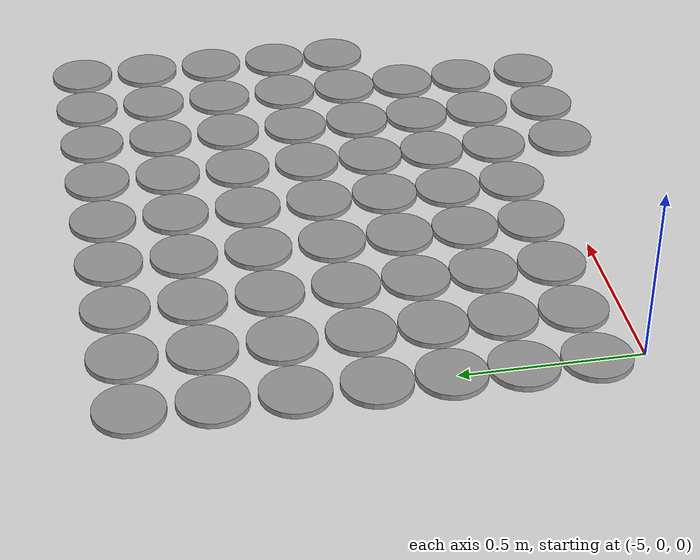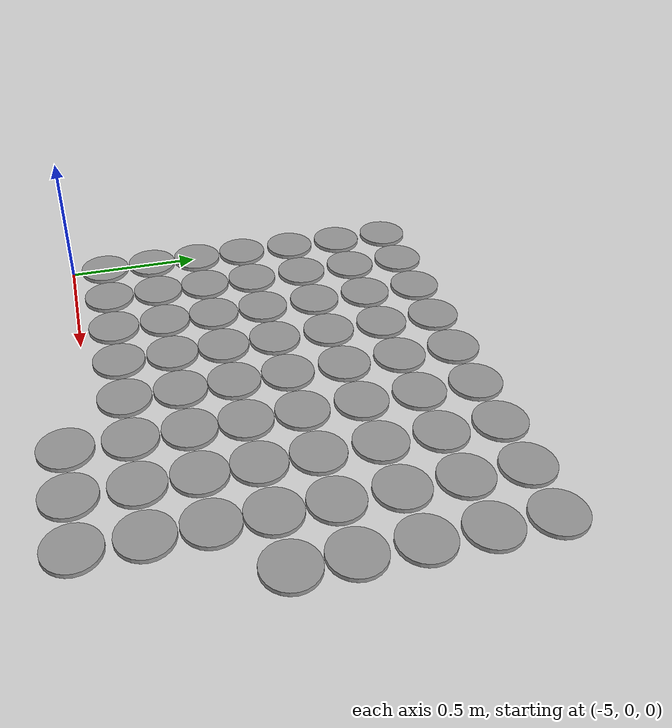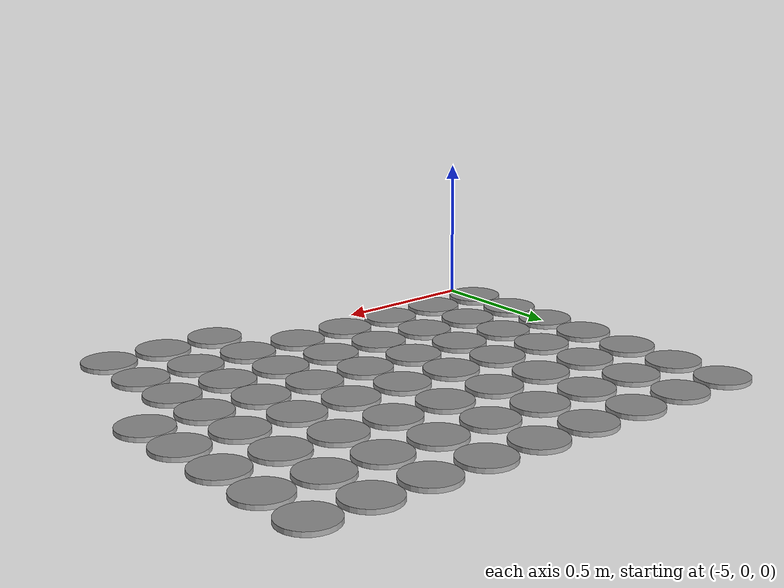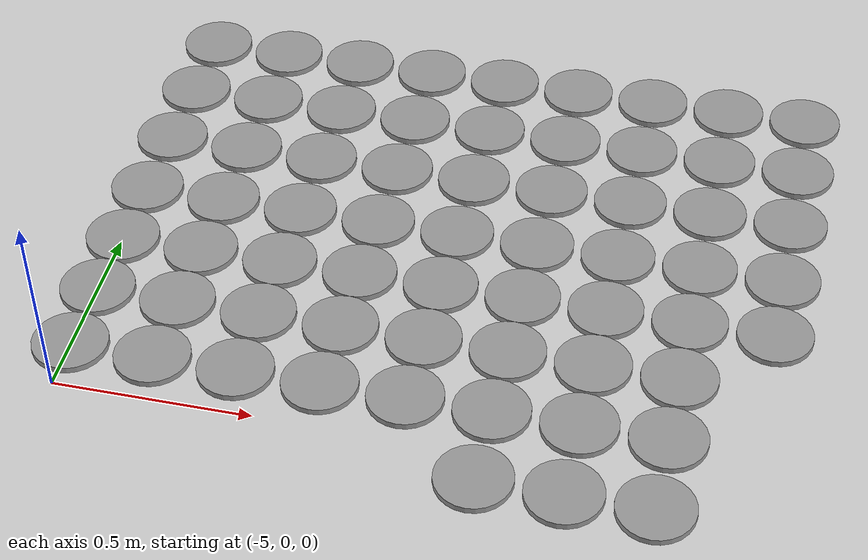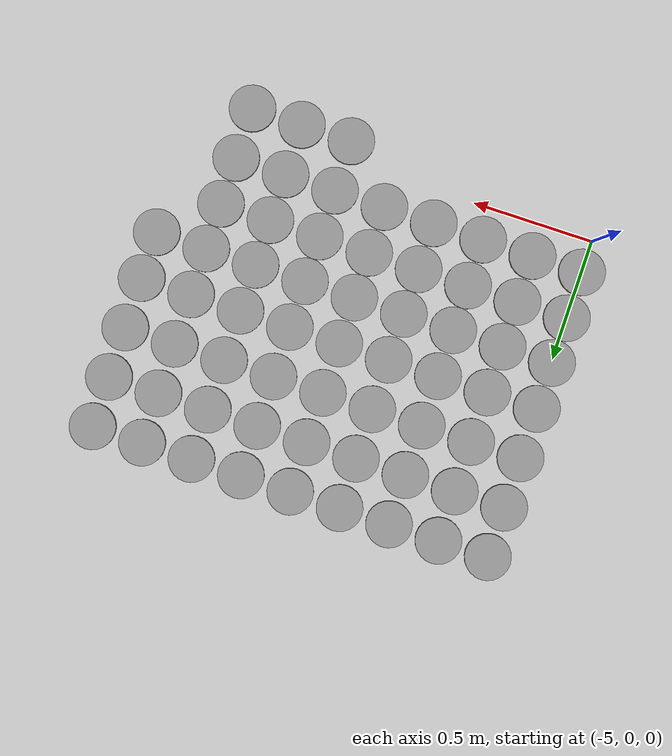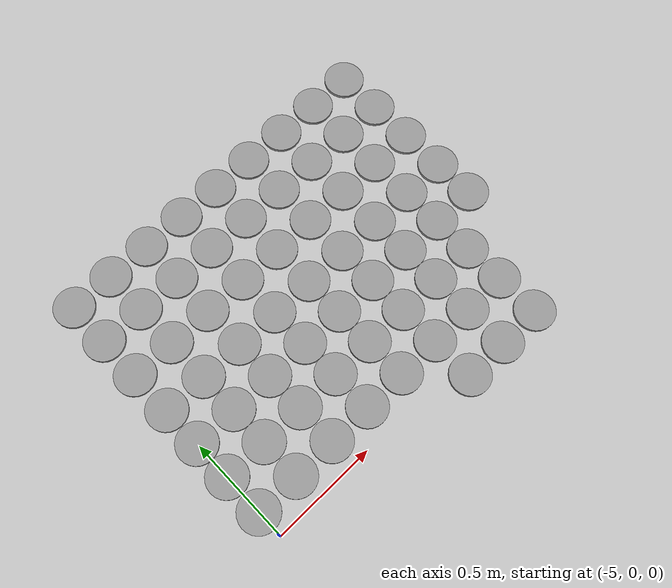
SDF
<sdf version="1.6">
 <world name="default">
  <model name="unit_cylinder_clone_0">
   <pose>-5 0.515077 0.008111 0 -0 0</pose>
   <link name="link">
    <inertial>
     <mass>1</mass>
     <inertia><ixx>0.145833</ixx><ixy>0</ixy><ixz>0</ixz><iyy>0.145833</iyy><iyz>0</iyz><izz>0.125</izz></inertia>
    </inertial>
    <collision name="collision">
     <geometry><cylinder><radius>0.0950718</radius><length>0.0162339</length></cylinder></geometry>
     <max_contacts>5</max_contacts>
    </collision>
    <visual name="visual">
     <geometry><cylinder><radius>0.0950718</radius><length>0.0162339</length></cylinder></geometry>
     <material>
      <script><name>Gazebo/Grey</name><uri>file://media/materials/scripts/gazebo.material</uri></script>
     </material>
    </visual>
   </link>
  </model>
  <model name="unit_cylinder_clone_1">
   <pose>-5 0.71 0.008111 0 -0 0</pose>
   <link name="link">
    <inertial>
     <mass>1</mass>
     <inertia><ixx>0.145833</ixx><ixy>0</ixy><ixz>0</ixz><iyy>0.145833</iyy><iyz>0</iyz><izz>0.125</izz></inertia>
    </inertial>
    <collision name="collision">
     <geometry><cylinder><radius>0.0950718</radius><length>0.0162339</length></cylinder></geometry>
     <max_contacts>5</max_contacts>
    </collision>
    <visual name="visual">
     <geometry><cylinder><radius>0.0950718</radius><length>0.0162339</length></cylinder></geometry>
     <material>
      <script><name>Gazebo/Grey</name><uri>file://media/materials/scripts/gazebo.material</uri></script>
     </material>
    </visual>
   </link>
  </model>
  <model name="unit_cylinder_clone_2">
   <pose>-5 0.92 0.008111 0 -0 0</pose>
   <link name="link">
    <inertial>
     <mass>1</mass>
     <inertia><ixx>0.145833</ixx><ixy>0</ixy><ixz>0</ixz><iyy>0.145833</iyy><iyz>0</iyz><izz>0.125</izz></inertia>
    </inertial>
    <collision name="collision">
     <geometry><cylinder><radius>0.0950718</radius><length>0.0162339</length></cylinder></geometry>
     <max_contacts>5</max_contacts>
    </collision>
    <visual name="visual">
     <geometry><cylinder><radius>0.0950718</radius><length>0.0162339</length></cylinder></geometry>
     <material>
      <script><name>Gazebo/Grey</name><uri>file://media/materials/scripts/gazebo.material</uri></script>
     </material>
    </visual>
   </link>
  </model>
  <model name="unit_cylinder_clone_3">
   <pose>-5 1.13 0.008111 0 -0 0</pose>
   <link name="link">
    <inertial>
     <mass>1</mass>
     <inertia><ixx>0.145833</ixx><ixy>0</ixy><ixz>0</ixz><iyy>0.145833</iyy><iyz>0</iyz><izz>0.125</izz></inertia>
    </inertial>
    <collision name="collision">
     <geometry><cylinder><radius>0.0950718</radius><length>0.0162339</length></cylinder></geometry>
     <max_contacts>5</max_contacts>
    </collision>
    <visual name="visual">
     <geometry><cylinder><radius>0.0950718</radius><length>0.0162339</length></cylinder></geometry>
     <material>
      <script><name>Gazebo/Grey</name><uri>file://media/materials/scripts/gazebo.material</uri></script>
     </material>
    </visual>
   </link>
  </model>
  <model name="unit_cylinder_clone_4">
   <pose>-5 1.34 0.008111 0 -0 0</pose>
   <link name="link">
    <inertial>
     <mass>1</mass>
     <inertia><ixx>0.145833</ixx><ixy>0</ixy><ixz>0</ixz><iyy>0.145833</iyy><iyz>0</iyz><izz>0.125</izz></inertia>
    </inertial>
    <collision name="collision">
     <geometry><cylinder><radius>0.0950718</radius><length>0.0162339</length></cylinder></geometry>
     <max_contacts>5</max_contacts>
    </collision>
    <visual name="visual">
     <geometry><cylinder><radius>0.0950718</radius><length>0.0162339</length></cylinder></geometry>
     <material>
      <script><name>Gazebo/Grey</name><uri>file://media/materials/scripts/gazebo.material</uri></script>
     </material>
    </visual>
   </link>
  </model>
  <model name="unit_cylinder_clone_5">
   <pose>-4.79 0.515077 0.008111 0 -0 0</pose>
   <link name="link">
    <inertial>
     <mass>1</mass>
     <inertia><ixx>0.145833</ixx><ixy>0</ixy><ixz>0</ixz><iyy>0.145833</iyy><iyz>0</iyz><izz>0.125</izz></inertia>
    </inertial>
    <collision name="collision">
     <geometry><cylinder><radius>0.0950718</radius><length>0.0162339</length></cylinder></geometry>
     <max_contacts>5</max_contacts>
    </collision>
    <visual name="visual">
     <geometry><cylinder><radius>0.0950718</radius><length>0.0162339</length></cylinder></geometry>
     <material>
      <script><name>Gazebo/Grey</name><uri>file://media/materials/scripts/gazebo.material</uri></script>
     </material>
    </visual>
   </link>
  </model>
  <model name="unit_cylinder_clone_6">
   <pose>-4.79 0.71 0.008111 0 -0 0</pose>
   <link name="link">
    <inertial>
     <mass>1</mass>
     <inertia><ixx>0.145833</ixx><ixy>0</ixy><ixz>0</ixz><iyy>0.145833</iyy><iyz>0</iyz><izz>0.125</izz></inertia>
    </inertial>
    <collision name="collision">
     <geometry><cylinder><radius>0.0950718</radius><length>0.0162339</length></cylinder></geometry>
     <max_contacts>5</max_contacts>
    </collision>
    <visual name="visual">
     <geometry><cylinder><radius>0.0950718</radius><length>0.0162339</length></cylinder></geometry>
     <material>
      <script><name>Gazebo/Grey</name><uri>file://media/materials/scripts/gazebo.material</uri></script>
     </material>
    </visual>
   </link>
  </model>
  <model name="unit_cylinder_clone_7">
   <pose>-4.79 0.92 0.008111 0 -0 0</pose>
   <link name="link">
    <inertial>
     <mass>1</mass>
     <inertia><ixx>0.145833</ixx><ixy>0</ixy><ixz>0</ixz><iyy>0.145833</iyy><iyz>0</iyz><izz>0.125</izz></inertia>
    </inertial>
    <collision name="collision">
     <geometry><cylinder><radius>0.0950718</radius><length>0.0162339</length></cylinder></geometry>
     <max_contacts>5</max_contacts>
    </collision>
    <visual name="visual">
     <geometry><cylinder><radius>0.0950718</radius><length>0.0162339</length></cylinder></geometry>
     <material>
      <script><name>Gazebo/Grey</name><uri>file://media/materials/scripts/gazebo.material</uri></script>
     </material>
    </visual>
   </link>
  </model>
  <model name="unit_cylinder_clone_8">
   <pose>-4.79 1.13 0.008111 0 -0 0</pose>
   <link name="link">
    <inertial>
     <mass>1</mass>
     <inertia><ixx>0.145833</ixx><ixy>0</ixy><ixz>0</ixz><iyy>0.145833</iyy><iyz>0</iyz><izz>0.125</izz></inertia>
    </inertial>
    <collision name="collision">
     <geometry><cylinder><radius>0.0950718</radius><length>0.0162339</length></cylinder></geometry>
     <max_contacts>5</max_contacts>
    </collision>
    <visual name="visual">
     <geometry><cylinder><radius>0.0950718</radius><length>0.0162339</length></cylinder></geometry>
     <material>
      <script><name>Gazebo/Grey</name><uri>file://media/materials/scripts/gazebo.material</uri></script>
     </material>
    </visual>
   </link>
  </model>
  <model name="unit_cylinder_clone_9">
   <pose>-4.79 1.34 0.008111 0 -0 0</pose>
   <link name="link">
    <inertial>
     <mass>1</mass>
     <inertia><ixx>0.145833</ixx><ixy>0</ixy><ixz>0</ixz><iyy>0.145833</iyy><iyz>0</iyz><izz>0.125</izz></inertia>
    </inertial>
    <collision name="collision">
     <geometry><cylinder><radius>0.0950718</radius><length>0.0162339</length></cylinder></geometry>
     <max_contacts>5</max_contacts>
    </collision>
    <visual name="visual">
     <geometry><cylinder><radius>0.0950718</radius><length>0.0162339</length></cylinder></geometry>
     <material>
      <script><name>Gazebo/Grey</name><uri>file://media/materials/scripts/gazebo.material</uri></script>
     </material>
    </visual>
   </link>
  </model>
  <model name="unit_cylinder_clone_10">
   <pose>-4.58 0.515077 0.008111 0 -0 0</pose>
   <link name="link">
    <inertial>
     <mass>1</mass>
     <inertia><ixx>0.145833</ixx><ixy>0</ixy><ixz>0</ixz><iyy>0.145833</iyy><iyz>0</iyz><izz>0.125</izz></inertia>
    </inertial>
    <collision name="collision">
     <geometry><cylinder><radius>0.0950718</radius><length>0.0162339</length></cylinder></geometry>
     <max_contacts>5</max_contacts>
    </collision>
    <visual name="visual">
     <geometry><cylinder><radius>0.0950718</radius><length>0.0162339</length></cylinder></geometry>
     <material>
      <script><name>Gazebo/Grey</name><uri>file://media/materials/scripts/gazebo.material</uri></script>
     </material>
    </visual>
   </link>
  </model>
  <model name="unit_cylinder_clone_11">
   <pose>-4.58 0.71 0.008111 0 -0 0</pose>
   <link name="link">
    <inertial>
     <mass>1</mass>
     <inertia><ixx>0.145833</ixx><ixy>0</ixy><ixz>0</ixz><iyy>0.145833</iyy><iyz>0</iyz><izz>0.125</izz></inertia>
    </inertial>
    <collision name="collision">
     <geometry><cylinder><radius>0.0950718</radius><length>0.0162339</length></cylinder></geometry>
     <max_contacts>5</max_contacts>
    </collision>
    <visual name="visual">
     <geometry><cylinder><radius>0.0950718</radius><length>0.0162339</length></cylinder></geometry>
     <material>
      <script><name>Gazebo/Grey</name><uri>file://media/materials/scripts/gazebo.material</uri></script>
     </material>
    </visual>
   </link>
  </model>
  <model name="unit_cylinder_clone_12">
   <pose>-4.58 0.92 0.008111 0 -0 0</pose>
   <link name="link">
    <inertial>
     <mass>1</mass>
     <inertia><ixx>0.145833</ixx><ixy>0</ixy><ixz>0</ixz><iyy>0.145833</iyy><iyz>0</iyz><izz>0.125</izz></inertia>
    </inertial>
    <collision name="collision">
     <geometry><cylinder><radius>0.0950718</radius><length>0.0162339</length></cylinder></geometry>
     <max_contacts>5</max_contacts>
    </collision>
    <visual name="visual">
     <geometry><cylinder><radius>0.0950718</radius><length>0.0162339</length></cylinder></geometry>
     <material>
      <script><name>Gazebo/Grey</name><uri>file://media/materials/scripts/gazebo.material</uri></script>
     </material>
    </visual>
   </link>
  </model>
  <model name="unit_cylinder_clone_13">
   <pose>-4.58 1.13 0.008111 0 -0 0</pose>
   <link name="link">
    <inertial>
     <mass>1</mass>
     <inertia><ixx>0.145833</ixx><ixy>0</ixy><ixz>0</ixz><iyy>0.145833</iyy><iyz>0</iyz><izz>0.125</izz></inertia>
    </inertial>
    <collision name="collision">
     <geometry><cylinder><radius>0.0950718</radius><length>0.0162339</length></cylinder></geometry>
     <max_contacts>5</max_contacts>
    </collision>
    <visual name="visual">
     <geometry><cylinder><radius>0.0950718</radius><length>0.0162339</length></cylinder></geometry>
     <material>
      <script><name>Gazebo/Grey</name><uri>file://media/materials/scripts/gazebo.material</uri></script>
     </material>
    </visual>
   </link>
  </model>
  <model name="unit_cylinder_clone_14">
   <pose>-4.58 1.34 0.008111 0 -0 0</pose>
   <link name="link">
    <inertial>
     <mass>1</mass>
     <inertia><ixx>0.145833</ixx><ixy>0</ixy><ixz>0</ixz><iyy>0.145833</iyy><iyz>0</iyz><izz>0.125</izz></inertia>
    </inertial>
    <collision name="collision">
     <geometry><cylinder><radius>0.0950718</radius><length>0.0162339</length></cylinder></geometry>
     <max_contacts>5</max_contacts>
    </collision>
    <visual name="visual">
     <geometry><cylinder><radius>0.0950718</radius><length>0.0162339</length></cylinder></geometry>
     <material>
      <script><name>Gazebo/Grey</name><uri>file://media/materials/scripts/gazebo.material</uri></script>
     </material>
    </visual>
   </link>
  </model>
  <model name="unit_cylinder_clone_15">
   <pose>-4.37 0.515077 0.008111 0 -0 0</pose>
   <link name="link">
    <inertial>
     <mass>1</mass>
     <inertia><ixx>0.145833</ixx><ixy>0</ixy><ixz>0</ixz><iyy>0.145833</iyy><iyz>0</iyz><izz>0.125</izz></inertia>
    </inertial>
    <collision name="collision">
     <geometry><cylinder><radius>0.0950718</radius><length>0.0162339</length></cylinder></geometry>
     <max_contacts>5</max_contacts>
    </collision>
    <visual name="visual">
     <geometry><cylinder><radius>0.0950718</radius><length>0.0162339</length></cylinder></geometry>
     <material>
      <script><name>Gazebo/Grey</name><uri>file://media/materials/scripts/gazebo.material</uri></script>
     </material>
    </visual>
   </link>
  </model>
  <model name="unit_cylinder_clone_16">
   <pose>-4.37 0.71 0.008111 0 -0 0</pose>
   <link name="link">
    <inertial>
     <mass>1</mass>
     <inertia><ixx>0.145833</ixx><ixy>0</ixy><ixz>0</ixz><iyy>0.145833</iyy><iyz>0</iyz><izz>0.125</izz></inertia>
    </inertial>
    <collision name="collision">
     <geometry><cylinder><radius>0.0950718</radius><length>0.0162339</length></cylinder></geometry>
     <max_contacts>5</max_contacts>
    </collision>
    <visual name="visual">
     <geometry><cylinder><radius>0.0950718</radius><length>0.0162339</length></cylinder></geometry>
     <material>
      <script><name>Gazebo/Grey</name><uri>file://media/materials/scripts/gazebo.material</uri></script>
     </material>
    </visual>
   </link>
  </model>
  <model name="unit_cylinder_clone_17">
   <pose>-4.37 0.92 0.008111 0 -0 0</pose>
   <link name="link">
    <inertial>
     <mass>1</mass>
     <inertia><ixx>0.145833</ixx><ixy>0</ixy><ixz>0</ixz><iyy>0.145833</iyy><iyz>0</iyz><izz>0.125</izz></inertia>
    </inertial>
    <collision name="collision">
     <geometry><cylinder><radius>0.0950718</radius><length>0.0162339</length></cylinder></geometry>
     <max_contacts>5</max_contacts>
    </collision>
    <visual name="visual">
     <geometry><cylinder><radius>0.0950718</radius><length>0.0162339</length></cylinder></geometry>
     <material>
      <script><name>Gazebo/Grey</name><uri>file://media/materials/scripts/gazebo.material</uri></script>
     </material>
    </visual>
   </link>
  </model>
  <model name="unit_cylinder_clone_18">
   <pose>-4.37 1.13 0.008111 0 -0 0</pose>
   <link name="link">
    <inertial>
     <mass>1</mass>
     <inertia><ixx>0.145833</ixx><ixy>0</ixy><ixz>0</ixz><iyy>0.145833</iyy><iyz>0</iyz><izz>0.125</izz></inertia>
    </inertial>
    <collision name="collision">
     <geometry><cylinder><radius>0.0950718</radius><length>0.0162339</length></cylinder></geometry>
     <max_contacts>5</max_contacts>
    </collision>
    <visual name="visual">
     <geometry><cylinder><radius>0.0950718</radius><length>0.0162339</length></cylinder></geometry>
     <material>
      <script><name>Gazebo/Grey</name><uri>file://media/materials/scripts/gazebo.material</uri></script>
     </material>
    </visual>
   </link>
  </model>
  <model name="unit_cylinder_clone_19">
   <pose>-4.37 1.34 0.008111 0 -0 0</pose>
   <link name="link">
    <inertial>
     <mass>1</mass>
     <inertia><ixx>0.145833</ixx><ixy>0</ixy><ixz>0</ixz><iyy>0.145833</iyy><iyz>0</iyz><izz>0.125</izz></inertia>
    </inertial>
    <collision name="collision">
     <geometry><cylinder><radius>0.0950718</radius><length>0.0162339</length></cylinder></geometry>
     <max_contacts>5</max_contacts>
    </collision>
    <visual name="visual">
     <geometry><cylinder><radius>0.0950718</radius><length>0.0162339</length></cylinder></geometry>
     <material>
      <script><name>Gazebo/Grey</name><uri>file://media/materials/scripts/gazebo.material</uri></script>
     </material>
    </visual>
   </link>
  </model>
  <model name="unit_cylinder_clone_20">
   <pose>-4.16 0.515077 0.008111 0 -0 0</pose>
   <link name="link">
    <inertial>
     <mass>1</mass>
     <inertia><ixx>0.145833</ixx><ixy>0</ixy><ixz>0</ixz><iyy>0.145833</iyy><iyz>0</iyz><izz>0.125</izz></inertia>
    </inertial>
    <collision name="collision">
     <geometry><cylinder><radius>0.0950718</radius><length>0.0162339</length></cylinder></geometry>
     <max_contacts>5</max_contacts>
    </collision>
    <visual name="visual">
     <geometry><cylinder><radius>0.0950718</radius><length>0.0162339</length></cylinder></geometry>
     <material>
      <script><name>Gazebo/Grey</name><uri>file://media/materials/scripts/gazebo.material</uri></script>
     </material>
    </visual>
   </link>
  </model>
  <model name="unit_cylinder_clone_21">
   <pose>-4.16 0.71 0.008111 0 -0 0</pose>
   <link name="link">
    <inertial>
     <mass>1</mass>
     <inertia><ixx>0.145833</ixx><ixy>0</ixy><ixz>0</ixz><iyy>0.145833</iyy><iyz>0</iyz><izz>0.125</izz></inertia>
    </inertial>
    <collision name="collision">
     <geometry><cylinder><radius>0.0950718</radius><length>0.0162339</length></cylinder></geometry>
     <max_contacts>5</max_contacts>
    </collision>
    <visual name="visual">
     <geometry><cylinder><radius>0.0950718</radius><length>0.0162339</length></cylinder></geometry>
     <material>
      <script><name>Gazebo/Grey</name><uri>file://media/materials/scripts/gazebo.material</uri></script>
     </material>
    </visual>
   </link>
  </model>
  <model name="unit_cylinder_clone_22">
   <pose>-4.16 0.92 0.008111 0 -0 0</pose>
   <link name="link">
    <inertial>
     <mass>1</mass>
     <inertia><ixx>0.145833</ixx><ixy>0</ixy><ixz>0</ixz><iyy>0.145833</iyy><iyz>0</iyz><izz>0.125</izz></inertia>
    </inertial>
    <collision name="collision">
     <geometry><cylinder><radius>0.0950718</radius><length>0.0162339</length></cylinder></geometry>
     <max_contacts>5</max_contacts>
    </collision>
    <visual name="visual">
     <geometry><cylinder><radius>0.0950718</radius><length>0.0162339</length></cylinder></geometry>
     <material>
      <script><name>Gazebo/Grey</name><uri>file://media/materials/scripts/gazebo.material</uri></script>
     </material>
    </visual>
   </link>
  </model>
  <model name="unit_cylinder_clone_23">
   <pose>-4.16 1.13 0.008111 0 -0 0</pose>
   <link name="link">
    <inertial>
     <mass>1</mass>
     <inertia><ixx>0.145833</ixx><ixy>0</ixy><ixz>0</ixz><iyy>0.145833</iyy><iyz>0</iyz><izz>0.125</izz></inertia>
    </inertial>
    <collision name="collision">
     <geometry><cylinder><radius>0.0950718</radius><length>0.0162339</length></cylinder></geometry>
     <max_contacts>5</max_contacts>
    </collision>
    <visual name="visual">
     <geometry><cylinder><radius>0.0950718</radius><length>0.0162339</length></cylinder></geometry>
     <material>
      <script><name>Gazebo/Grey</name><uri>file://media/materials/scripts/gazebo.material</uri></script>
     </material>
    </visual>
   </link>
  </model>
  <model name="unit_cylinder_clone_24">
   <pose>-4.16 1.34 0.008111 0 -0 0</pose>
   <link name="link">
    <inertial>
     <mass>1</mass>
     <inertia><ixx>0.145833</ixx><ixy>0</ixy><ixz>0</ixz><iyy>0.145833</iyy><iyz>0</iyz><izz>0.125</izz></inertia>
    </inertial>
    <collision name="collision">
     <geometry><cylinder><radius>0.0950718</radius><length>0.0162339</length></cylinder></geometry>
     <max_contacts>5</max_contacts>
    </collision>
    <visual name="visual">
     <geometry><cylinder><radius>0.0950718</radius><length>0.0162339</length></cylinder></geometry>
     <material>
      <script><name>Gazebo/Grey</name><uri>file://media/materials/scripts/gazebo.material</uri></script>
     </material>
    </visual>
   </link>
  </model>
  <model name="unit_cylinder_clone_25">
   <pose>-3.95 0.515077 0.008111 0 -0 0</pose>
   <link name="link">
    <inertial>
     <mass>1</mass>
     <inertia><ixx>0.145833</ixx><ixy>0</ixy><ixz>0</ixz><iyy>0.145833</iyy><iyz>0</iyz><izz>0.125</izz></inertia>
    </inertial>
    <collision name="collision">
     <geometry><cylinder><radius>0.0950718</radius><length>0.0162339</length></cylinder></geometry>
     <max_contacts>5</max_contacts>
    </collision>
    <visual name="visual">
     <geometry><cylinder><radius>0.0950718</radius><length>0.0162339</length></cylinder></geometry>
     <material>
      <script><name>Gazebo/Grey</name><uri>file://media/materials/scripts/gazebo.material</uri></script>
     </material>
    </visual>
   </link>
  </model>
  <model name="unit_cylinder_clone_26">
   <pose>-3.95 0.71 0.008111 0 -0 0</pose>
   <link name="link">
    <inertial>
     <mass>1</mass>
     <inertia><ixx>0.145833</ixx><ixy>0</ixy><ixz>0</ixz><iyy>0.145833</iyy><iyz>0</iyz><izz>0.125</izz></inertia>
    </inertial>
    <collision name="collision">
     <geometry><cylinder><radius>0.0950718</radius><length>0.0162339</length></cylinder></geometry>
     <max_contacts>5</max_contacts>
    </collision>
    <visual name="visual">
     <geometry><cylinder><radius>0.0950718</radius><length>0.0162339</length></cylinder></geometry>
     <material>
      <script><name>Gazebo/Grey</name><uri>file://media/materials/scripts/gazebo.material</uri></script>
     </material>
    </visual>
   </link>
  </model>
  <model name="unit_cylinder_clone_27">
   <pose>-3.95 0.92 0.008111 0 -0 0</pose>
   <link name="link">
    <inertial>
     <mass>1</mass>
     <inertia><ixx>0.145833</ixx><ixy>0</ixy><ixz>0</ixz><iyy>0.145833</iyy><iyz>0</iyz><izz>0.125</izz></inertia>
    </inertial>
    <collision name="collision">
     <geometry><cylinder><radius>0.0950718</radius><length>0.0162339</length></cylinder></geometry>
     <max_contacts>5</max_contacts>
    </collision>
    <visual name="visual">
     <geometry><cylinder><radius>0.0950718</radius><length>0.0162339</length></cylinder></geometry>
     <material>
      <script><name>Gazebo/Grey</name><uri>file://media/materials/scripts/gazebo.material</uri></script>
     </material>
    </visual>
   </link>
  </model>
  <model name="unit_cylinder_clone_28">
   <pose>-3.95 1.13 0.008111 0 -0 0</pose>
   <link name="link">
    <inertial>
     <mass>1</mass>
     <inertia><ixx>0.145833</ixx><ixy>0</ixy><ixz>0</ixz><iyy>0.145833</iyy><iyz>0</iyz><izz>0.125</izz></inertia>
    </inertial>
    <collision name="collision">
     <geometry><cylinder><radius>0.0950718</radius><length>0.0162339</length></cylinder></geometry>
     <max_contacts>5</max_contacts>
    </collision>
    <visual name="visual">
     <geometry><cylinder><radius>0.0950718</radius><length>0.0162339</length></cylinder></geometry>
     <material>
      <script><name>Gazebo/Grey</name><uri>file://media/materials/scripts/gazebo.material</uri></script>
     </material>
    </visual>
   </link>
  </model>
  <model name="unit_cylinder_clone_29">
   <pose>-3.95 1.34 0.008111 0 -0 0</pose>
   <link name="link">
    <inertial>
     <mass>1</mass>
     <inertia><ixx>0.145833</ixx><ixy>0</ixy><ixz>0</ixz><iyy>0.145833</iyy><iyz>0</iyz><izz>0.125</izz></inertia>
    </inertial>
    <collision name="collision">
     <geometry><cylinder><radius>0.0950718</radius><length>0.0162339</length></cylinder></geometry>
     <max_contacts>5</max_contacts>
    </collision>
    <visual name="visual">
     <geometry><cylinder><radius>0.0950718</radius><length>0.0162339</length></cylinder></geometry>
     <material>
      <script><name>Gazebo/Grey</name><uri>file://media/materials/scripts/gazebo.material</uri></script>
     </material>
    </visual>
   </link>
  </model>
  <model name="unit_cylinder_clone_30">
   <pose>-3.74 0.515077 0.008111 0 -0 0</pose>
   <link name="link">
    <inertial>
     <mass>1</mass>
     <inertia><ixx>0.145833</ixx><ixy>0</ixy><ixz>0</ixz><iyy>0.145833</iyy><iyz>0</iyz><izz>0.125</izz></inertia>
    </inertial>
    <collision name="collision">
     <geometry><cylinder><radius>0.0950718</radius><length>0.0162339</length></cylinder></geometry>
     <max_contacts>5</max_contacts>
    </collision>
    <visual name="visual">
     <geometry><cylinder><radius>0.0950718</radius><length>0.0162339</length></cylinder></geometry>
     <material>
      <script><name>Gazebo/Grey</name><uri>file://media/materials/scripts/gazebo.material</uri></script>
     </material>
    </visual>
   </link>
  </model>
  <model name="unit_cylinder_clone_31">
   <pose>-3.74 0.71 0.008111 0 -0 0</pose>
   <link name="link">
    <inertial>
     <mass>1</mass>
     <inertia><ixx>0.145833</ixx><ixy>0</ixy><ixz>0</ixz><iyy>0.145833</iyy><iyz>0</iyz><izz>0.125</izz></inertia>
    </inertial>
    <collision name="collision">
     <geometry><cylinder><radius>0.0950718</radius><length>0.0162339</length></cylinder></geometry>
     <max_contacts>5</max_contacts>
    </collision>
    <visual name="visual">
     <geometry><cylinder><radius>0.0950718</radius><length>0.0162339</length></cylinder></geometry>
     <material>
      <script><name>Gazebo/Grey</name><uri>file://media/materials/scripts/gazebo.material</uri></script>
     </material>
    </visual>
   </link>
  </model>
  <model name="unit_cylinder_clone_32">
   <pose>-3.74 0.92 0.008111 0 -0 0</pose>
   <link name="link">
    <inertial>
     <mass>1</mass>
     <inertia><ixx>0.145833</ixx><ixy>0</ixy><ixz>0</ixz><iyy>0.145833</iyy><iyz>0</iyz><izz>0.125</izz></inertia>
    </inertial>
    <collision name="collision">
     <geometry><cylinder><radius>0.0950718</radius><length>0.0162339</length></cylinder></geometry>
     <max_contacts>5</max_contacts>
    </collision>
    <visual name="visual">
     <geometry><cylinder><radius>0.0950718</radius><length>0.0162339</length></cylinder></geometry>
     <material>
      <script><name>Gazebo/Grey</name><uri>file://media/materials/scripts/gazebo.material</uri></script>
     </material>
    </visual>
   </link>
  </model>
  <model name="unit_cylinder_clone_33">
   <pose>-3.74 1.13 0.008111 0 -0 0</pose>
   <link name="link">
    <inertial>
     <mass>1</mass>
     <inertia><ixx>0.145833</ixx><ixy>0</ixy><ixz>0</ixz><iyy>0.145833</iyy><iyz>0</iyz><izz>0.125</izz></inertia>
    </inertial>
    <collision name="collision">
     <geometry><cylinder><radius>0.0950718</radius><length>0.0162339</length></cylinder></geometry>
     <max_contacts>5</max_contacts>
    </collision>
    <visual name="visual">
     <geometry><cylinder><radius>0.0950718</radius><length>0.0162339</length></cylinder></geometry>
     <material>
      <script><name>Gazebo/Grey</name><uri>file://media/materials/scripts/gazebo.material</uri></script>
     </material>
    </visual>
   </link>
  </model>
  <model name="unit_cylinder_clone_34">
   <pose>-3.74 1.34 0.008111 0 -0 0</pose>
   <link name="link">
    <inertial>
     <mass>1</mass>
     <inertia><ixx>0.145833</ixx><ixy>0</ixy><ixz>0</ixz><iyy>0.145833</iyy><iyz>0</iyz><izz>0.125</izz></inertia>
    </inertial>
    <collision name="collision">
     <geometry><cylinder><radius>0.0950718</radius><length>0.0162339</length></cylinder></geometry>
     <max_contacts>5</max_contacts>
    </collision>
    <visual name="visual">
     <geometry><cylinder><radius>0.0950718</radius><length>0.0162339</length></cylinder></geometry>
     <material>
      <script><name>Gazebo/Grey</name><uri>file://media/materials/scripts/gazebo.material</uri></script>
     </material>
    </visual>
   </link>
  </model>
  <model name="unit_cylinder_clone_35">
   <pose>-3.53 0.515077 0.008111 0 -0 0</pose>
   <link name="link">
    <inertial>
     <mass>1</mass>
     <inertia><ixx>0.145833</ixx><ixy>0</ixy><ixz>0</ixz><iyy>0.145833</iyy><iyz>0</iyz><izz>0.125</izz></inertia>
    </inertial>
    <collision name="collision">
     <geometry><cylinder><radius>0.0950718</radius><length>0.0162339</length></cylinder></geometry>
     <max_contacts>5</max_contacts>
    </collision>
    <visual name="visual">
     <geometry><cylinder><radius>0.0950718</radius><length>0.0162339</length></cylinder></geometry>
     <material>
      <script><name>Gazebo/Grey</name><uri>file://media/materials/scripts/gazebo.material</uri></script>
     </material>
    </visual>
   </link>
  </model>
  <model name="unit_cylinder_clone_36">
   <pose>-3.53 0.71 0.008111 0 -0 0</pose>
   <link name="link">
    <inertial>
     <mass>1</mass>
     <inertia><ixx>0.145833</ixx><ixy>0</ixy><ixz>0</ixz><iyy>0.145833</iyy><iyz>0</iyz><izz>0.125</izz></inertia>
    </inertial>
    <collision name="collision">
     <geometry><cylinder><radius>0.0950718</radius><length>0.0162339</length></cylinder></geometry>
     <max_contacts>5</max_contacts>
    </collision>
    <visual name="visual">
     <geometry><cylinder><radius>0.0950718</radius><length>0.0162339</length></cylinder></geometry>
     <material>
      <script><name>Gazebo/Grey</name><uri>file://media/materials/scripts/gazebo.material</uri></script>
     </material>
    </visual>
   </link>
  </model>
  <model name="unit_cylinder_clone_37">
   <pose>-3.53 0.92 0.008111 0 -0 0</pose>
   <link name="link">
    <inertial>
     <mass>1</mass>
     <inertia><ixx>0.145833</ixx><ixy>0</ixy><ixz>0</ixz><iyy>0.145833</iyy><iyz>0</iyz><izz>0.125</izz></inertia>
    </inertial>
    <collision name="collision">
     <geometry><cylinder><radius>0.0950718</radius><length>0.0162339</length></cylinder></geometry>
     <max_contacts>5</max_contacts>
    </collision>
    <visual name="visual">
     <geometry><cylinder><radius>0.0950718</radius><length>0.0162339</length></cylinder></geometry>
     <material>
      <script><name>Gazebo/Grey</name><uri>file://media/materials/scripts/gazebo.material</uri></script>
     </material>
    </visual>
   </link>
  </model>
  <model name="unit_cylinder_clone_38">
   <pose>-3.53 1.13 0.008111 0 -0 0</pose>
   <link name="link">
    <inertial>
     <mass>1</mass>
     <inertia><ixx>0.145833</ixx><ixy>0</ixy><ixz>0</ixz><iyy>0.145833</iyy><iyz>0</iyz><izz>0.125</izz></inertia>
    </inertial>
    <collision name="collision">
     <geometry><cylinder><radius>0.0950718</radius><length>0.0162339</length></cylinder></geometry>
     <max_contacts>5</max_contacts>
    </collision>
    <visual name="visual">
     <geometry><cylinder><radius>0.0950718</radius><length>0.0162339</length></cylinder></geometry>
     <material>
      <script><name>Gazebo/Grey</name><uri>file://media/materials/scripts/gazebo.material</uri></script>
     </material>
    </visual>
   </link>
  </model>
  <model name="unit_cylinder_clone_39">
   <pose>-3.53 1.34 0.008111 0 -0 0</pose>
   <link name="link">
    <inertial>
     <mass>1</mass>
     <inertia><ixx>0.145833</ixx><ixy>0</ixy><ixz>0</ixz><iyy>0.145833</iyy><iyz>0</iyz><izz>0.125</izz></inertia>
    </inertial>
    <collision name="collision">
     <geometry><cylinder><radius>0.0950718</radius><length>0.0162339</length></cylinder></geometry>
     <max_contacts>5</max_contacts>
    </collision>
    <visual name="visual">
     <geometry><cylinder><radius>0.0950718</radius><length>0.0162339</length></cylinder></geometry>
     <material>
      <script><name>Gazebo/Grey</name><uri>file://media/materials/scripts/gazebo.material</uri></script>
     </material>
    </visual>
   </link>
  </model>
  <model name="unit_cylinder_clone_40">
   <pose>-3.32 0.515077 0.008111 0 -0 0</pose>
   <link name="link">
    <inertial>
     <mass>1</mass>
     <inertia><ixx>0.145833</ixx><ixy>0</ixy><ixz>0</ixz><iyy>0.145833</iyy><iyz>0</iyz><izz>0.125</izz></inertia>
    </inertial>
    <collision name="collision">
     <geometry><cylinder><radius>0.0950718</radius><length>0.0162339</length></cylinder></geometry>
     <max_contacts>5</max_contacts>
    </collision>
    <visual name="visual">
     <geometry><cylinder><radius>0.0950718</radius><length>0.0162339</length></cylinder></geometry>
     <material>
      <script><name>Gazebo/Grey</name><uri>file://media/materials/scripts/gazebo.material</uri></script>
     </material>
    </visual>
   </link>
  </model>
  <model name="unit_cylinder_clone_41">
   <pose>-3.32 0.71 0.008111 0 -0 0</pose>
   <link name="link">
    <inertial>
     <mass>1</mass>
     <inertia><ixx>0.145833</ixx><ixy>0</ixy><ixz>0</ixz><iyy>0.145833</iyy><iyz>0</iyz><izz>0.125</izz></inertia>
    </inertial>
    <collision name="collision">
     <geometry><cylinder><radius>0.0950718</radius><length>0.0162339</length></cylinder></geometry>
     <max_contacts>5</max_contacts>
    </collision>
    <visual name="visual">
     <geometry><cylinder><radius>0.0950718</radius><length>0.0162339</length></cylinder></geometry>
     <material>
      <script><name>Gazebo/Grey</name><uri>file://media/materials/scripts/gazebo.material</uri></script>
     </material>
    </visual>
   </link>
  </model>
  <model name="unit_cylinder_clone_42">
   <pose>-3.32 0.92 0.008111 0 -0 0</pose>
   <link name="link">
    <inertial>
     <mass>1</mass>
     <inertia><ixx>0.145833</ixx><ixy>0</ixy><ixz>0</ixz><iyy>0.145833</iyy><iyz>0</iyz><izz>0.125</izz></inertia>
    </inertial>
    <collision name="collision">
     <geometry><cylinder><radius>0.0950718</radius><length>0.0162339</length></cylinder></geometry>
     <max_contacts>5</max_contacts>
    </collision>
    <visual name="visual">
     <geometry><cylinder><radius>0.0950718</radius><length>0.0162339</length></cylinder></geometry>
     <material>
      <script><name>Gazebo/Grey</name><uri>file://media/materials/scripts/gazebo.material</uri></script>
     </material>
    </visual>
   </link>
  </model>
  <model name="unit_cylinder_clone_43">
   <pose>-3.32 1.13 0.008111 0 -0 0</pose>
   <link name="link">
    <inertial>
     <mass>1</mass>
     <inertia><ixx>0.145833</ixx><ixy>0</ixy><ixz>0</ixz><iyy>0.145833</iyy><iyz>0</iyz><izz>0.125</izz></inertia>
    </inertial>
    <collision name="collision">
     <geometry><cylinder><radius>0.0950718</radius><length>0.0162339</length></cylinder></geometry>
     <max_contacts>5</max_contacts>
    </collision>
    <visual name="visual">
     <geometry><cylinder><radius>0.0950718</radius><length>0.0162339</length></cylinder></geometry>
     <material>
      <script><name>Gazebo/Grey</name><uri>file://media/materials/scripts/gazebo.material</uri></script>
     </material>
    </visual>
   </link>
  </model>
  <model name="unit_cylinder_clone_44">
   <pose>-3.32 1.34 0.008111 0 -0 0</pose>
   <link name="link">
    <inertial>
     <mass>1</mass>
     <inertia><ixx>0.145833</ixx><ixy>0</ixy><ixz>0</ixz><iyy>0.145833</iyy><iyz>0</iyz><izz>0.125</izz></inertia>
    </inertial>
    <collision name="collision">
     <geometry><cylinder><radius>0.0950718</radius><length>0.0162339</length></cylinder></geometry>
     <max_contacts>5</max_contacts>
    </collision>
    <visual name="visual">
     <geometry><cylinder><radius>0.0950718</radius><length>0.0162339</length></cylinder></geometry>
     <material>
      <script><name>Gazebo/Grey</name><uri>file://media/materials/scripts/gazebo.material</uri></script>
     </material>
    </visual>
   </link>
  </model>
  <model name="unit_cylinder_clone_253">
   <pose>-5 0.13 0.008111 0 -0 0</pose>
   <link name="link">
    <inertial>
     <mass>1</mass>
     <inertia><ixx>0.145833</ixx><ixy>0</ixy><ixz>0</ixz><iyy>0.145833</iyy><iyz>0</iyz><izz>0.125</izz></inertia>
    </inertial>
    <collision name="collision">
     <geometry><cylinder><radius>0.0950718</radius><length>0.0162339</length></cylinder></geometry>
     <max_contacts>5</max_contacts>
    </collision>
    <visual name="visual">
     <geometry><cylinder><radius>0.0950718</radius><length>0.0162339</length></cylinder></geometry>
     <material>
      <script><name>Gazebo/Grey</name><uri>file://media/materials/scripts/gazebo.material</uri></script>
     </material>
    </visual>
   </link>
  </model>
  <model name="unit_cylinder_clone_254">
   <pose>-5 0.324923 0.008111 0 -0 0</pose>
   <link name="link">
    <inertial>
     <mass>1</mass>
     <inertia><ixx>0.145833</ixx><ixy>0</ixy><ixz>0</ixz><iyy>0.145833</iyy><iyz>0</iyz><izz>0.125</izz></inertia>
    </inertial>
    <collision name="collision">
     <geometry><cylinder><radius>0.0950718</radius><length>0.0162339</length></cylinder></geometry>
     <max_contacts>5</max_contacts>
    </collision>
    <visual name="visual">
     <geometry><cylinder><radius>0.0950718</radius><length>0.0162339</length></cylinder></geometry>
     <material>
      <script><name>Gazebo/Grey</name><uri>file://media/materials/scripts/gazebo.material</uri></script>
     </material>
    </visual>
   </link>
  </model>
  <model name="unit_cylinder_clone_258">
   <pose>-4.79 0.13 0.008111 0 -0 0</pose>
   <link name="link">
    <inertial>
     <mass>1</mass>
     <inertia><ixx>0.145833</ixx><ixy>0</ixy><ixz>0</ixz><iyy>0.145833</iyy><iyz>0</iyz><izz>0.125</izz></inertia>
    </inertial>
    <collision name="collision">
     <geometry><cylinder><radius>0.0950718</radius><length>0.0162339</length></cylinder></geometry>
     <max_contacts>5</max_contacts>
    </collision>
    <visual name="visual">
     <geometry><cylinder><radius>0.0950718</radius><length>0.0162339</length></cylinder></geometry>
     <material>
      <script><name>Gazebo/Grey</name><uri>file://media/materials/scripts/gazebo.material</uri></script>
     </material>
    </visual>
   </link>
  </model>
  <model name="unit_cylinder_clone_259">
   <pose>-4.79 0.324923 0.008111 0 -0 0</pose>
   <link name="link">
    <inertial>
     <mass>1</mass>
     <inertia><ixx>0.145833</ixx><ixy>0</ixy><ixz>0</ixz><iyy>0.145833</iyy><iyz>0</iyz><izz>0.125</izz></inertia>
    </inertial>
    <collision name="collision">
     <geometry><cylinder><radius>0.0950718</radius><length>0.0162339</length></cylinder></geometry>
     <max_contacts>5</max_contacts>
    </collision>
    <visual name="visual">
     <geometry><cylinder><radius>0.0950718</radius><length>0.0162339</length></cylinder></geometry>
     <material>
      <script><name>Gazebo/Grey</name><uri>file://media/materials/scripts/gazebo.material</uri></script>
     </material>
    </visual>
   </link>
  </model>
  <model name="unit_cylinder_clone_263">
   <pose>-4.58 0.13 0.008111 0 -0 0</pose>
   <link name="link">
    <inertial>
     <mass>1</mass>
     <inertia><ixx>0.145833</ixx><ixy>0</ixy><ixz>0</ixz><iyy>0.145833</iyy><iyz>0</iyz><izz>0.125</izz></inertia>
    </inertial>
    <collision name="collision">
     <geometry><cylinder><radius>0.0950718</radius><length>0.0162339</length></cylinder></geometry>
     <max_contacts>5</max_contacts>
    </collision>
    <visual name="visual">
     <geometry><cylinder><radius>0.0950718</radius><length>0.0162339</length></cylinder></geometry>
     <material>
      <script><name>Gazebo/Grey</name><uri>file://media/materials/scripts/gazebo.material</uri></script>
     </material>
    </visual>
   </link>
  </model>
  <model name="unit_cylinder_clone_264">
   <pose>-4.58 0.324923 0.008111 0 -0 0</pose>
   <link name="link">
    <inertial>
     <mass>1</mass>
     <inertia><ixx>0.145833</ixx><ixy>0</ixy><ixz>0</ixz><iyy>0.145833</iyy><iyz>0</iyz><izz>0.125</izz></inertia>
    </inertial>
    <collision name="collision">
     <geometry><cylinder><radius>0.0950718</radius><length>0.0162339</length></cylinder></geometry>
     <max_contacts>5</max_contacts>
    </collision>
    <visual name="visual">
     <geometry><cylinder><radius>0.0950718</radius><length>0.0162339</length></cylinder></geometry>
     <material>
      <script><name>Gazebo/Grey</name><uri>file://media/materials/scripts/gazebo.material</uri></script>
     </material>
    </visual>
   </link>
  </model>
  <model name="unit_cylinder_clone_268">
   <pose>-4.37 0.13 0.008111 0 -0 0</pose>
   <link name="link">
    <inertial>
     <mass>1</mass>
     <inertia><ixx>0.145833</ixx><ixy>0</ixy><ixz>0</ixz><iyy>0.145833</iyy><iyz>0</iyz><izz>0.125</izz></inertia>
    </inertial>
    <collision name="collision">
     <geometry><cylinder><radius>0.0950718</radius><length>0.0162339</length></cylinder></geometry>
     <max_contacts>5</max_contacts>
    </collision>
    <visual name="visual">
     <geometry><cylinder><radius>0.0950718</radius><length>0.0162339</length></cylinder></geometry>
     <material>
      <script><name>Gazebo/Grey</name><uri>file://media/materials/scripts/gazebo.material</uri></script>
     </material>
    </visual>
   </link>
  </model>
  <model name="unit_cylinder_clone_269">
   <pose>-4.37 0.324923 0.008111 0 -0 0</pose>
   <link name="link">
    <inertial>
     <mass>1</mass>
     <inertia><ixx>0.145833</ixx><ixy>0</ixy><ixz>0</ixz><iyy>0.145833</iyy><iyz>0</iyz><izz>0.125</izz></inertia>
    </inertial>
    <collision name="collision">
     <geometry><cylinder><radius>0.0950718</radius><length>0.0162339</length></cylinder></geometry>
     <max_contacts>5</max_contacts>
    </collision>
    <visual name="visual">
     <geometry><cylinder><radius>0.0950718</radius><length>0.0162339</length></cylinder></geometry>
     <material>
      <script><name>Gazebo/Grey</name><uri>file://media/materials/scripts/gazebo.material</uri></script>
     </material>
    </visual>
   </link>
  </model>
  <model name="unit_cylinder_clone_273">
   <pose>-4.16 0.13 0.008111 0 -0 0</pose>
   <link name="link">
    <inertial>
     <mass>1</mass>
     <inertia><ixx>0.145833</ixx><ixy>0</ixy><ixz>0</ixz><iyy>0.145833</iyy><iyz>0</iyz><izz>0.125</izz></inertia>
    </inertial>
    <collision name="collision">
     <geometry><cylinder><radius>0.0950718</radius><length>0.0162339</length></cylinder></geometry>
     <max_contacts>5</max_contacts>
    </collision>
    <visual name="visual">
     <geometry><cylinder><radius>0.0950718</radius><length>0.0162339</length></cylinder></geometry>
     <material>
      <script><name>Gazebo/Grey</name><uri>file://media/materials/scripts/gazebo.material</uri></script>
     </material>
    </visual>
   </link>
  </model>
  <model name="unit_cylinder_clone_274">
   <pose>-4.16 0.324923 0.008111 0 -0 0</pose>
   <link name="link">
    <inertial>
     <mass>1</mass>
     <inertia><ixx>0.145833</ixx><ixy>0</ixy><ixz>0</ixz><iyy>0.145833</iyy><iyz>0</iyz><izz>0.125</izz></inertia>
    </inertial>
    <collision name="collision">
     <geometry><cylinder><radius>0.0950718</radius><length>0.0162339</length></cylinder></geometry>
     <max_contacts>5</max_contacts>
    </collision>
    <visual name="visual">
     <geometry><cylinder><radius>0.0950718</radius><length>0.0162339</length></cylinder></geometry>
     <material>
      <script><name>Gazebo/Grey</name><uri>file://media/materials/scripts/gazebo.material</uri></script>
     </material>
    </visual>
   </link>
  </model>
  <model name="unit_cylinder_clone_277">
   <pose>-3.95 -0.08 0.008111 0 -0 0</pose>
   <link name="link">
    <inertial>
     <mass>1</mass>
     <inertia><ixx>0.145833</ixx><ixy>0</ixy><ixz>0</ixz><iyy>0.145833</iyy><iyz>0</iyz><izz>0.125</izz></inertia>
    </inertial>
    <collision name="collision">
     <geometry><cylinder><radius>0.0950718</radius><length>0.0162339</length></cylinder></geometry>
     <max_contacts>5</max_contacts>
    </collision>
    <visual name="visual">
     <geometry><cylinder><radius>0.0950718</radius><length>0.0162339</length></cylinder></geometry>
     <material>
      <script><name>Gazebo/Grey</name><uri>file://media/materials/scripts/gazebo.material</uri></script>
     </material>
    </visual>
   </link>
  </model>
  <model name="unit_cylinder_clone_278">
   <pose>-3.95 0.13 0.008111 0 -0 0</pose>
   <link name="link">
    <inertial>
     <mass>1</mass>
     <inertia><ixx>0.145833</ixx><ixy>0</ixy><ixz>0</ixz><iyy>0.145833</iyy><iyz>0</iyz><izz>0.125</izz></inertia>
    </inertial>
    <collision name="collision">
     <geometry><cylinder><radius>0.0950718</radius><length>0.0162339</length></cylinder></geometry>
     <max_contacts>5</max_contacts>
    </collision>
    <visual name="visual">
     <geometry><cylinder><radius>0.0950718</radius><length>0.0162339</length></cylinder></geometry>
     <material>
      <script><name>Gazebo/Grey</name><uri>file://media/materials/scripts/gazebo.material</uri></script>
     </material>
    </visual>
   </link>
  </model>
  <model name="unit_cylinder_clone_279">
   <pose>-3.95 0.324923 0.008111 0 -0 0</pose>
   <link name="link">
    <inertial>
     <mass>1</mass>
     <inertia><ixx>0.145833</ixx><ixy>0</ixy><ixz>0</ixz><iyy>0.145833</iyy><iyz>0</iyz><izz>0.125</izz></inertia>
    </inertial>
    <collision name="collision">
     <geometry><cylinder><radius>0.0950718</radius><length>0.0162339</length></cylinder></geometry>
     <max_contacts>5</max_contacts>
    </collision>
    <visual name="visual">
     <geometry><cylinder><radius>0.0950718</radius><length>0.0162339</length></cylinder></geometry>
     <material>
      <script><name>Gazebo/Grey</name><uri>file://media/materials/scripts/gazebo.material</uri></script>
     </material>
    </visual>
   </link>
  </model>
  <model name="unit_cylinder_clone_282">
   <pose>-3.74 -0.08 0.008111 0 -0 0</pose>
   <link name="link">
    <inertial>
     <mass>1</mass>
     <inertia><ixx>0.145833</ixx><ixy>0</ixy><ixz>0</ixz><iyy>0.145833</iyy><iyz>0</iyz><izz>0.125</izz></inertia>
    </inertial>
    <collision name="collision">
     <geometry><cylinder><radius>0.0950718</radius><length>0.0162339</length></cylinder></geometry>
     <max_contacts>5</max_contacts>
    </collision>
    <visual name="visual">
     <geometry><cylinder><radius>0.0950718</radius><length>0.0162339</length></cylinder></geometry>
     <material>
      <script><name>Gazebo/Grey</name><uri>file://media/materials/scripts/gazebo.material</uri></script>
     </material>
    </visual>
   </link>
  </model>
  <model name="unit_cylinder_clone_283">
   <pose>-3.74 0.13 0.008111 0 -0 0</pose>
   <link name="link">
    <inertial>
     <mass>1</mass>
     <inertia><ixx>0.145833</ixx><ixy>0</ixy><ixz>0</ixz><iyy>0.145833</iyy><iyz>0</iyz><izz>0.125</izz></inertia>
    </inertial>
    <collision name="collision">
     <geometry><cylinder><radius>0.0950718</radius><length>0.0162339</length></cylinder></geometry>
     <max_contacts>5</max_contacts>
    </collision>
    <visual name="visual">
     <geometry><cylinder><radius>0.0950718</radius><length>0.0162339</length></cylinder></geometry>
     <material>
      <script><name>Gazebo/Grey</name><uri>file://media/materials/scripts/gazebo.material</uri></script>
     </material>
    </visual>
   </link>
  </model>
  <model name="unit_cylinder_clone_284">
   <pose>-3.74 0.324923 0.008111 0 -0 0</pose>
   <link name="link">
    <inertial>
     <mass>1</mass>
     <inertia><ixx>0.145833</ixx><ixy>0</ixy><ixz>0</ixz><iyy>0.145833</iyy><iyz>0</iyz><izz>0.125</izz></inertia>
    </inertial>
    <collision name="collision">
     <geometry><cylinder><radius>0.0950718</radius><length>0.0162339</length></cylinder></geometry>
     <max_contacts>5</max_contacts>
    </collision>
    <visual name="visual">
     <geometry><cylinder><radius>0.0950718</radius><length>0.0162339</length></cylinder></geometry>
     <material>
      <script><name>Gazebo/Grey</name><uri>file://media/materials/scripts/gazebo.material</uri></script>
     </material>
    </visual>
   </link>
  </model>
  <model name="unit_cylinder_clone_287">
   <pose>-3.53 -0.08 0.008111 0 -0 0</pose>
   <link name="link">
    <inertial>
     <mass>1</mass>
     <inertia><ixx>0.145833</ixx><ixy>0</ixy><ixz>0</ixz><iyy>0.145833</iyy><iyz>0</iyz><izz>0.125</izz></inertia>
    </inertial>
    <collision name="collision">
     <geometry><cylinder><radius>0.0950718</radius><length>0.0162339</length></cylinder></geometry>
     <max_contacts>5</max_contacts>
    </collision>
    <visual name="visual">
     <geometry><cylinder><radius>0.0950718</radius><length>0.0162339</length></cylinder></geometry>
     <material>
      <script><name>Gazebo/Grey</name><uri>file://media/materials/scripts/gazebo.material</uri></script>
     </material>
    </visual>
   </link>
  </model>
  <model name="unit_cylinder_clone_288">
   <pose>-3.53 0.13 0.008111 0 -0 0</pose>
   <link name="link">
    <inertial>
     <mass>1</mass>
     <inertia><ixx>0.145833</ixx><ixy>0</ixy><ixz>0</ixz><iyy>0.145833</iyy><iyz>0</iyz><izz>0.125</izz></inertia>
    </inertial>
    <collision name="collision">
     <geometry><cylinder><radius>0.0950718</radius><length>0.0162339</length></cylinder></geometry>
     <max_contacts>5</max_contacts>
    </collision>
    <visual name="visual">
     <geometry><cylinder><radius>0.0950718</radius><length>0.0162339</length></cylinder></geometry>
     <material>
      <script><name>Gazebo/Grey</name><uri>file://media/materials/scripts/gazebo.material</uri></script>
     </material>
    </visual>
   </link>
  </model>
  <model name="unit_cylinder_clone_289">
   <pose>-3.53 0.324923 0.008111 0 -0 0</pose>
   <link name="link">
    <inertial>
     <mass>1</mass>
     <inertia><ixx>0.145833</ixx><ixy>0</ixy><ixz>0</ixz><iyy>0.145833</iyy><iyz>0</iyz><izz>0.125</izz></inertia>
    </inertial>
    <collision name="collision">
     <geometry><cylinder><radius>0.0950718</radius><length>0.0162339</length></cylinder></geometry>
     <max_contacts>5</max_contacts>
    </collision>
    <visual name="visual">
     <geometry><cylinder><radius>0.0950718</radius><length>0.0162339</length></cylinder></geometry>
     <material>
      <script><name>Gazebo/Grey</name><uri>file://media/materials/scripts/gazebo.material</uri></script>
     </material>
    </visual>
   </link>
  </model>
 </world>
</sdf>
